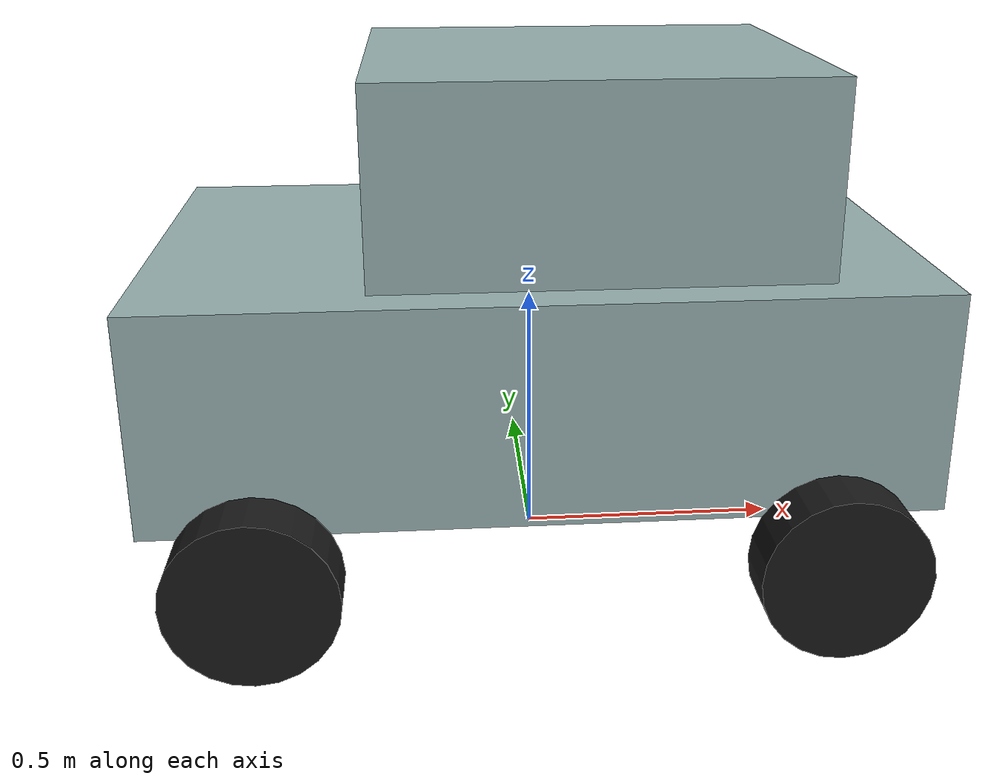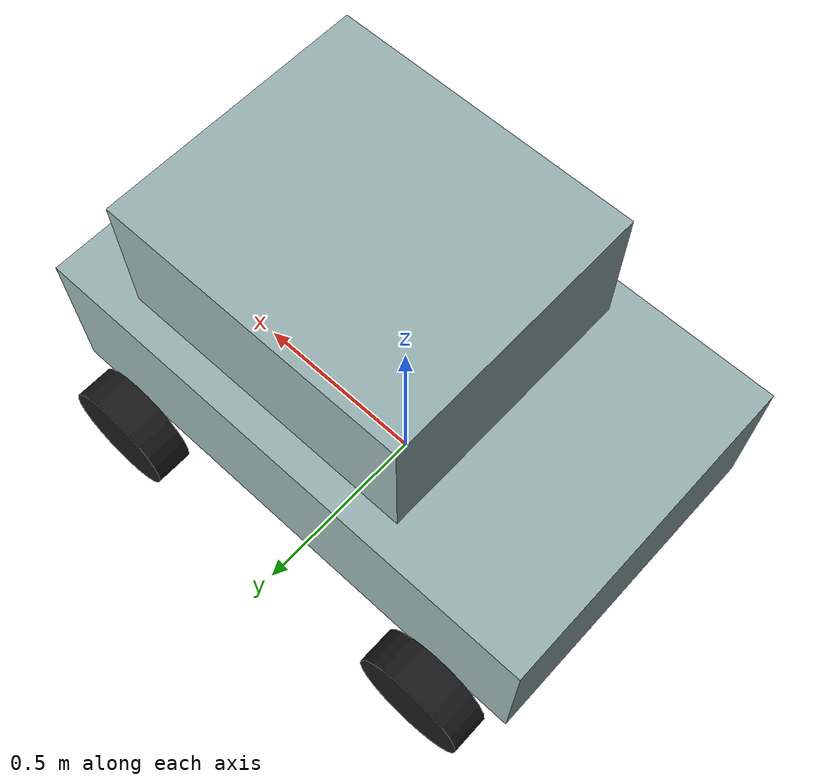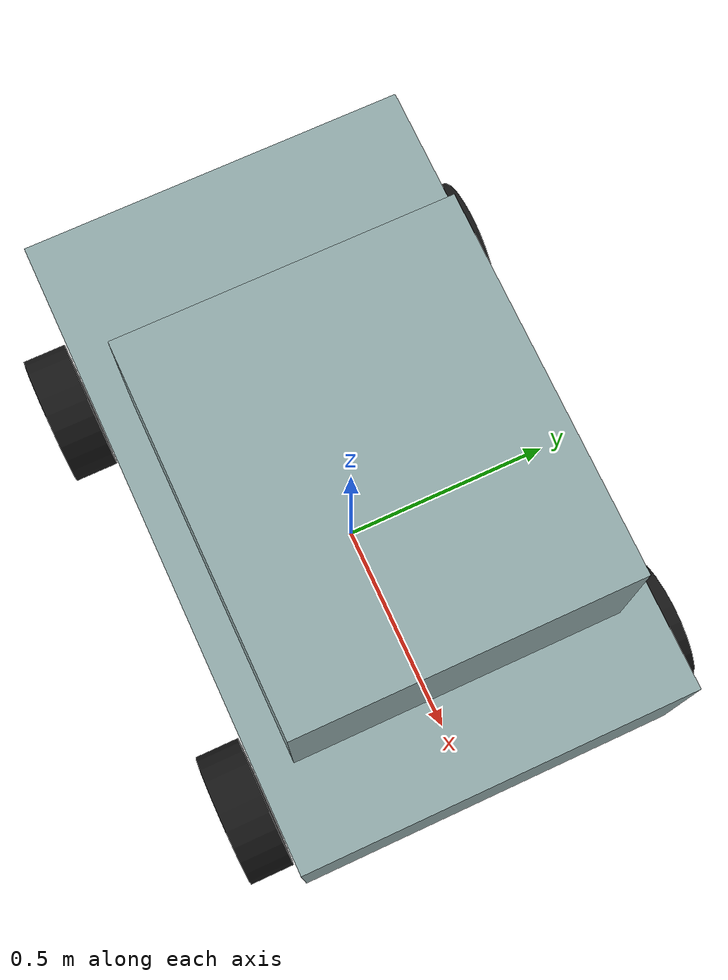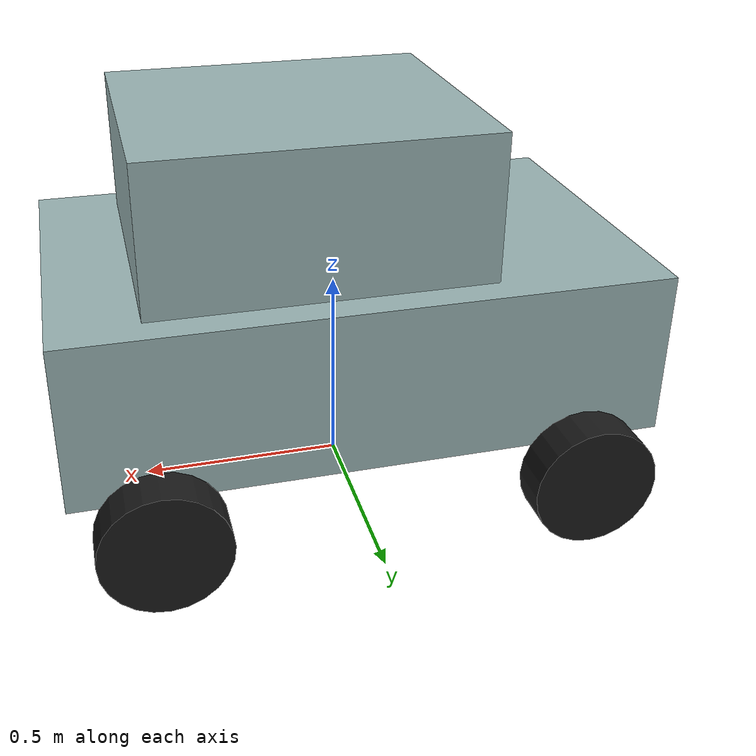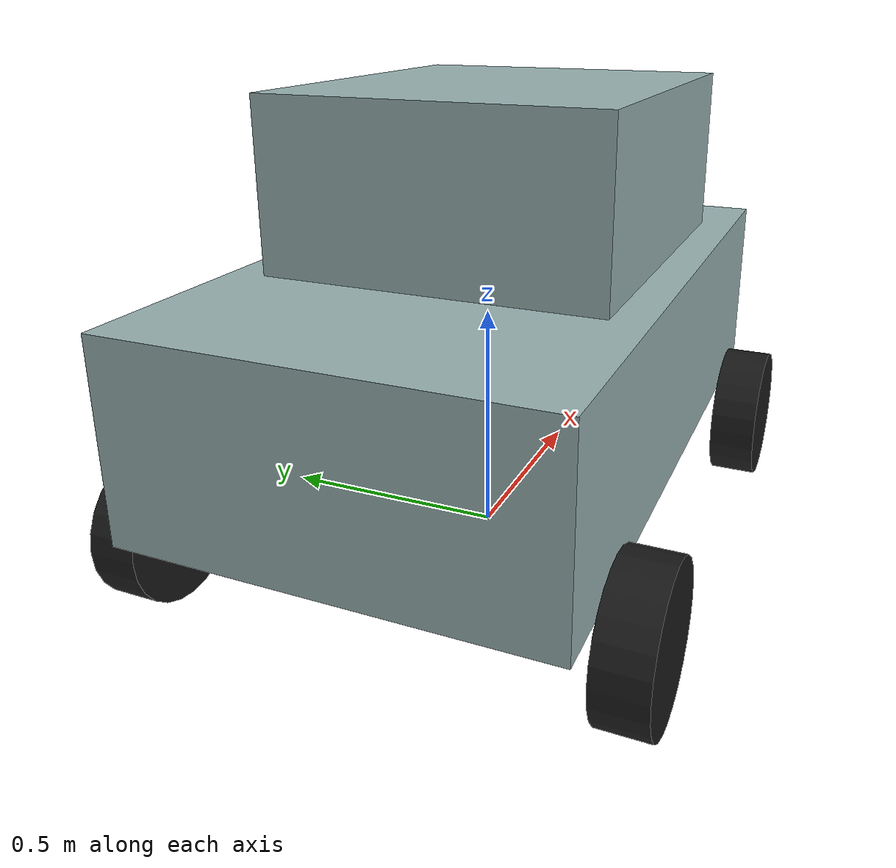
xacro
<?xml version="1.0"?>
<robot xmlns:xacro="http://www.ros.org/wiki/xacro" name="simple_car">

  <xacro:include filename="../sensors/receiver.urdf.xacro" />

  <xacro:property name="car_ground_clearance" value="0.22"/> <xacro:property name="car_length" value="1.4"/>
  <xacro:property name="car_width"  value="0.85"/>
  <xacro:property name="car_total_height"   value="0.75"/>
  <xacro:property name="car_body_height"    value="0.4"/>
  <xacro:property name="cabin_height"       value="0.35"/>
  <xacro:property name="cabin_length"       value="0.8"/>
  <xacro:property name="cabin_width"        value="0.7"/>
  <xacro:property name="cabin_x_offset"     value="0.1"/>
  <xacro:property name="car_mass"   value="30.0"/>

  <xacro:property name="car_wheel_radius" value="0.15"/>
  <xacro:property name="car_wheel_width"  value="0.1"/>
  <xacro:property name="car_wheel_mass"   value="1.0"/>

  <xacro:property name="car_chassis_z_center" value="${car_ground_clearance + car_body_height / 2.0}"/>

  <xacro:property name="wheel_x_margin" value="0.2"/>
  <xacro:property name="wheel_y_gap"    value="0.01"/>

  <xacro:property name="wheel_x_offset" value="${car_length / 2.0 - wheel_x_margin}"/>
  <xacro:property name="wheel_y_offset" value="${car_width  / 2.0 + (car_wheel_width / 2.0) + wheel_y_gap}"/>

  <xacro:property name="wheel_z_offset" value="${car_wheel_radius}"/>

  <xacro:macro name="wheel" params="prefix parent joint_origin_xyz">
    <joint name="${prefix}_wheel_joint" type="fixed">
      <parent link="${parent}"/>
      <child link="${prefix}_wheel_link"/>
      <origin xyz="${joint_origin_xyz}" rpy="0 0 0"/>
    </joint>
    <link name="${prefix}_wheel_link">
      <visual>
        <origin xyz="0 0 0" rpy="1.57079632679 0 0"/>
        <geometry>
          <cylinder radius="${car_wheel_radius}" length="${car_wheel_width}"/>
        </geometry>
        <material name="black"/>
      </visual>
      <collision>
        <origin xyz="0 0 0" rpy="1.57079632679 0 0"/>
        <geometry>
          <cylinder radius="${car_wheel_radius}" length="${car_wheel_width}"/>
        </geometry>
      </collision>
      <inertial>
        <mass value="${car_wheel_mass}"/>
        <inertia ixx="0.1" ixy="0" ixz="0" iyy="0.1" iyz="0" izz="0.1"/>
      </inertial>
    </link>
  </xacro:macro>

  <material name="CarBodySilver">
    <color rgba="0.6 0.7 0.7 1.0"/>
  </material>
  <material name="black">
    <color rgba="0.1 0.1 0.1 1.0"/>
  </material>

  <link name="car_base_footprint"/>

  <joint name="car_base_joint" type="fixed">
    <parent link="car_base_footprint"/>
    <child link="car_base_link"/>
    <origin xyz="0 0 ${car_chassis_z_center}" rpy="0 0 0"/>
  </joint>

  <link name="car_base_link">
    <visual>
      <geometry>
        <box size="${car_length} ${car_width} ${car_body_height}"/>
      </geometry>
      <material name="CarBodySilver"/>
    </visual>
    <collision>
      <geometry>
        <box size="${car_length} ${car_width} ${car_body_height}"/>
      </geometry>
    </collision>
    <inertial>
      <mass value="${car_mass}"/>
      <inertia ixx="1.0" ixy="0" ixz="0" iyy="1.0" iyz="0" izz="1.0"/>
    </inertial>
  </link>

  <joint name="cabin_joint" type="fixed">
    <parent link="car_base_link"/>
    <child link="cabin_link"/>
    <origin xyz="${cabin_x_offset} 0 ${car_body_height / 2.0 + cabin_height / 2.0}" rpy="0 0 0"/>
  </joint>

  <link name="cabin_link">
    <visual>
      <geometry>
        <box size="${cabin_length} ${cabin_width} ${cabin_height}"/>
      </geometry>
      <material name="CarBodySilver"/>
    </visual>
    <collision>
      <geometry>
        <box size="${cabin_length} ${cabin_width} ${cabin_height}"/>
      </geometry>
    </collision>
  </link>

  <xacro:wheel prefix="front_left"  parent="car_base_link"
    joint_origin_xyz="${wheel_x_offset}  ${wheel_y_offset}  ${wheel_z_offset - car_chassis_z_center}"/>
  <xacro:wheel prefix="front_right" parent="car_base_link"
    joint_origin_xyz="${wheel_x_offset} -${wheel_y_offset}  ${wheel_z_offset - car_chassis_z_center}"/>
  <xacro:wheel prefix="rear_left"   parent="car_base_link"
    joint_origin_xyz="-${wheel_x_offset} ${wheel_y_offset}  ${wheel_z_offset - car_chassis_z_center}"/>
  <xacro:wheel prefix="rear_right"  parent="car_base_link"
    joint_origin_xyz="-${wheel_x_offset} -${wheel_y_offset} ${wheel_z_offset - car_chassis_z_center}"/>

  <xacro:receiver_sensor
      prefix="front_receiver"
      parent="car_base_link"
      xyz_origin="0 0 ${-car_body_height/2.0 - 0.01/2.0}"
      rpy_origin="0 0 0" />

</robot>

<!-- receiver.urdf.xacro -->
<robot xmlns:xacro="http://www.ros.org/wiki/xacro" name="receiver_sensor">

  <material name="SensorRed">
    <color rgba="0.8 0.1 0.1 1.0"/>
  </material>

  <xacro:macro name="receiver_sensor" params="parent prefix xyz_origin rpy_origin">

    <joint name="${prefix}_joint" type="fixed">
      <parent link="${parent}"/>
      <child link="${prefix}_link"/>
      <origin xyz="${xyz_origin}" rpy="${rpy_origin}"/>
    </joint>

    <link name="${prefix}_link">
      <visual>
        <geometry>
          <cylinder radius="0.04" length="0.006"/>
        </geometry>
        <material name="SensorRed"/>
      </visual>
      <collision>
        <geometry>
          <cylinder radius="0.04" length="0.006"/>
        </geometry>
      </collision>
      <inertial>
        <mass value="0.05"/>
        <inertia ixx="0.0001" ixy="0" ixz="0" iyy="0.0001" iyz="0" izz="0.0001"/>
      </inertial>
    </link>
  </xacro:macro>

</robot>
